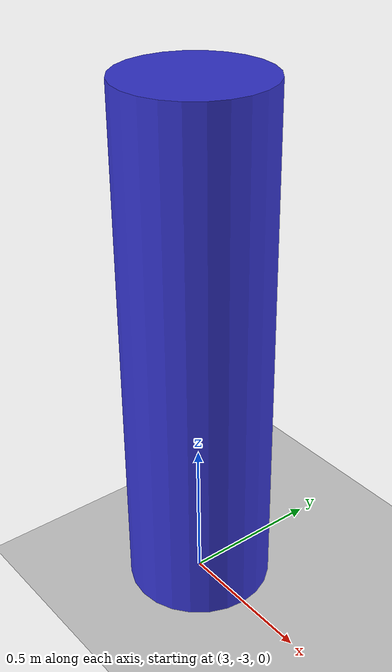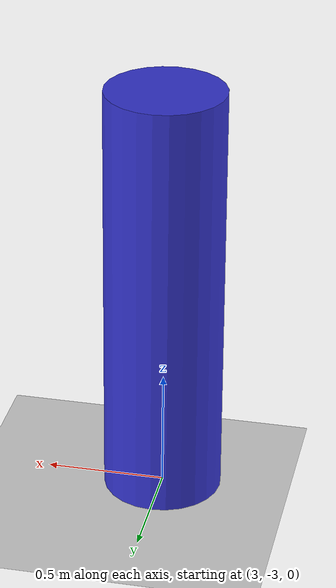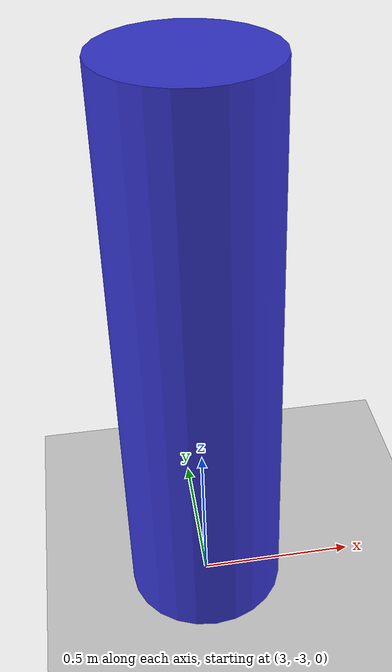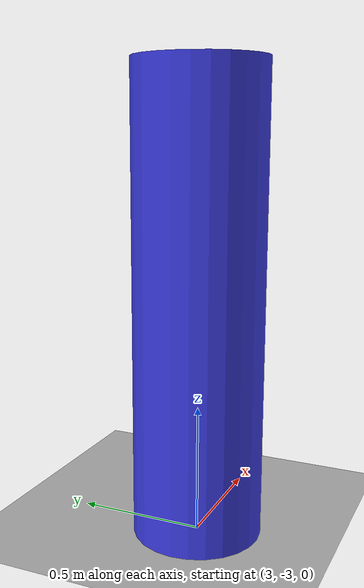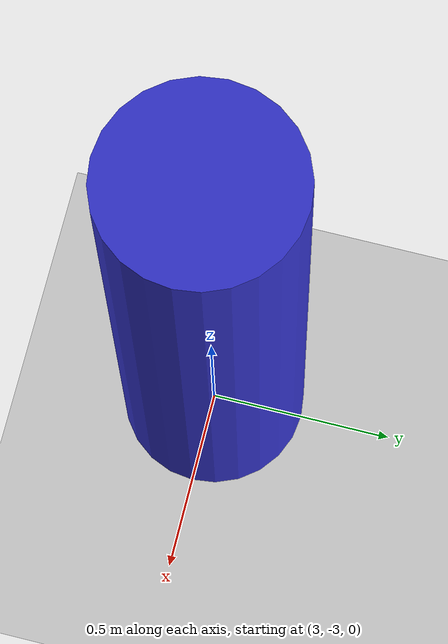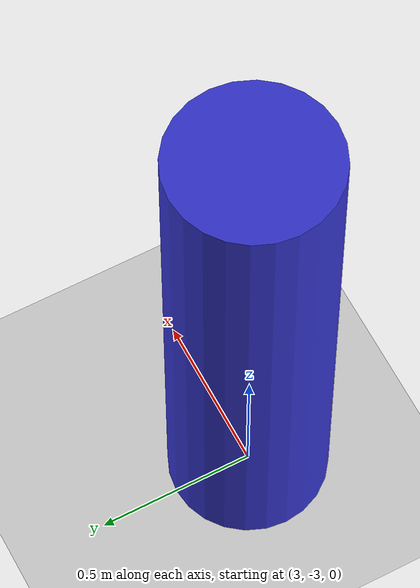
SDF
<?xml version="1.0" ?>
<sdf version="1.6">
  <world name="s3_human_proximity">
    <physics name="1ms" type="ignored">
      <max_step_size>0.001</max_step_size>
      <real_time_factor>1.0</real_time_factor>
    </physics>
    <plugin filename="ignition-gazebo-physics-system" name="ignition::gazebo::systems::Physics"/>
    <plugin filename="ignition-gazebo-user-commands-system" name="ignition::gazebo::systems::UserCommands"/>
    <plugin filename="ignition-gazebo-scene-broadcaster-system" name="ignition::gazebo::systems::SceneBroadcaster"/>
    <plugin filename="ignition-gazebo-sensors-system" name="ignition::gazebo::systems::Sensors">
      <render_engine>ogre2</render_engine>
    </plugin>
    <light type="directional" name="sun">
      <cast_shadows>true</cast_shadows>
      <pose>0 0 10 0 0 0</pose>
      <diffuse>0.8 0.8 0.8 1</diffuse>
      <specular>0.2 0.2 0.2 1</specular>
      <attenuation>
        <range>1000</range>
        <constant>0.9</constant>
        <linear>0.01</linear>
        <quadratic>0.001</quadratic>
      </attenuation>
      <direction>-0.5 0.1 -0.9</direction>
    </light>
    <model name="ground_plane">
      <static>true</static>
      <link name="link">
        <collision name="collision">
          <geometry>
            <plane>
              <normal>0 0 1</normal>
              <size>100 100</size>
            </plane>
          </geometry>
        </collision>
        <visual name="visual">
          <geometry>
            <plane>
              <normal>0 0 1</normal>
              <size>100 100</size>
            </plane>
          </geometry>
          <material>
            <ambient>0.8 0.8 0.8 1</ambient>
            <diffuse>0.8 0.8 0.8 1</diffuse>
            <specular>0.8 0.8 0.8 1</specular>
          </material>
        </visual>
      </link>
    </model>

    <!-- Static Human Model -->
    <model name="static_human">
      <static>true</static>
      <pose>3.0 -3.0 0.9 0 0 0</pose>
      <link name="link">
        <collision name="collision">
          <geometry>
            <cylinder>
              <radius>0.25</radius>
              <length>1.8</length>
            </cylinder>
          </geometry>
        </collision>
        <visual name="visual">
          <geometry>
            <cylinder>
              <radius>0.25</radius>
              <length>1.8</length>
            </cylinder>
          </geometry>
          <material>
            <ambient>0.2 0.2 0.8 1.0</ambient>
            <diffuse>0.2 0.2 0.8 1.0</diffuse>
          </material>
        </visual>
      </link>
    </model>
  </world>
</sdf>
